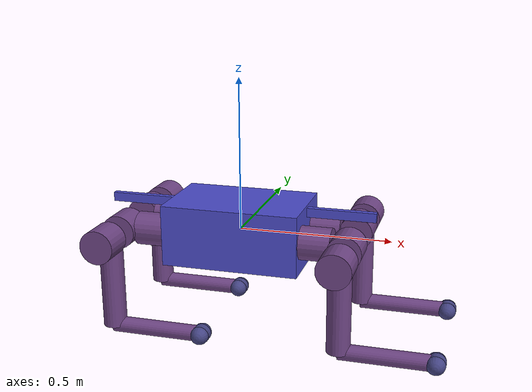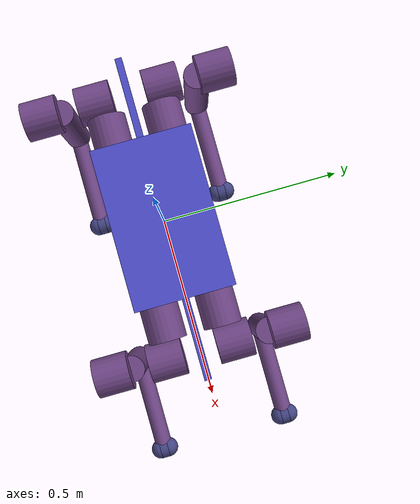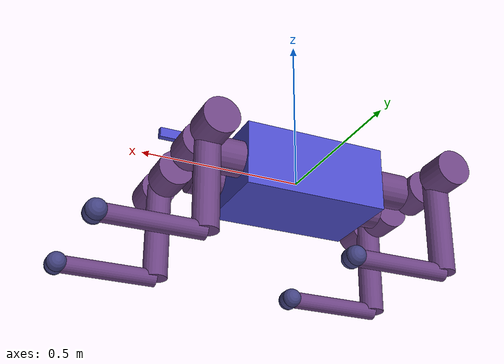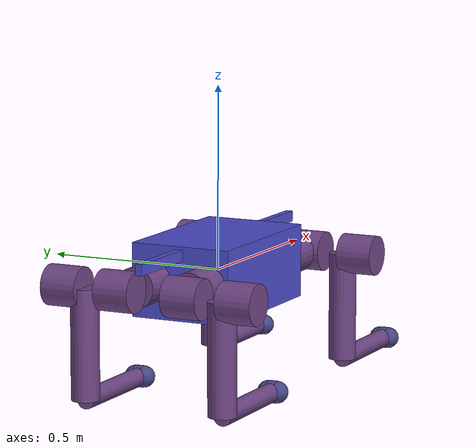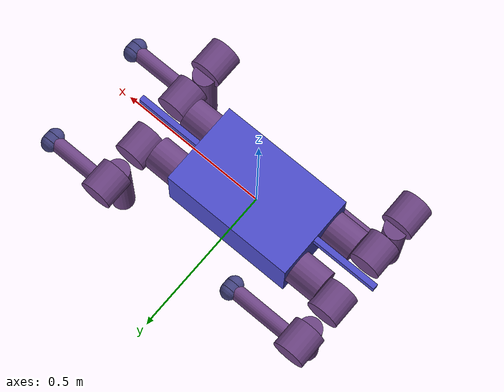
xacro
<?xml version="1.0"?>
<robot xmlns:xacro="http://www.ros.org/wiki/xacro" name="Cerberus">

    <xacro:include filename="$(find cerberus_description)/urdf/leg_macro.xacro" />

    <xacro:arg name="effort" default="60" />
    <xacro:arg name="max_joint_velocity" default="1.200" />

    <link name="base_link">
        <visual>
            <geometry>
                <box size="0.45 0.282 0.2" />
            </geometry>
            <material name="blue">
                <color rgba="0.3 0.3 0.8 1.0" />
            </material>
        </visual>
        <collision>
            <geometry>
                <box size="0.45 0.282 0.2" />
            </geometry>
        </collision>
        <visual>
            <origin xyz="0 0 0.077" />
            <geometry>
                <box size="0.9 0.019 0.03" />
            </geometry>
            <material name="blue">
                <color rgba="0.3 0.3 0.8 1.0" />
            </material>
        </visual>
        <collision>
            <origin xyz="0 0 0.077" />
            <geometry>
                <box size="0.9 0.019 0.03" />
            </geometry>
        </collision>
        <inertial>
            <mass value="5.0" />
            <inertia ixx="0.04980166667" iyy="0.1010416667" izz="0.1175"
                ixy="0.0" ixz="0.0" iyz="0.0" />
        </inertial>
    </link>

    <xacro:leg_macro
        leg_name="FL"
        parent_link="base_link"
        gearbox_offset="0.1"
        connector_xyz="0.275 0.08 0"
        connector_rpy="0 1.5707963267948966 0"
        axis="0 1 0"
        rot_off="1.5707963267948966"
        shoulder_lower_limit="-2.094395102"
        shoulder_upper_limit="1.047197551"
        knee_rot_off="1.5707963267948966"
        knee_lower_limit="-0.5235987756"
        knee_upper_limit="1.047197551"
        effort="$(arg effort)"
        max_joint_velocity="$(arg max_joint_velocity)"
    />

    <xacro:leg_macro
        leg_name="FR"
        parent_link="base_link"
        gearbox_offset="0.1"
        connector_xyz="0.275 -0.08 0"
        connector_rpy="3.14159265 -1.5707963267948966 0"
        axis="0 -1 0"
        rot_off="-1.5707963267948966"
        shoulder_lower_limit="-2.094395102"
        shoulder_upper_limit="1.047197551"
        knee_rot_off="-1.5707963267948966"
        knee_lower_limit="-0.5235987756"
        knee_upper_limit="1.047197551"
        effort="$(arg effort)"
        max_joint_velocity="$(arg max_joint_velocity)"
    />

    <xacro:leg_macro
        leg_name="RL"
        parent_link="base_link"
        gearbox_offset="-0.1"
        connector_xyz="-0.275 0.08 0"
        connector_rpy="0 1.5707963267948966 0"
        axis="0 1 0"
        rot_off="1.5707963267948966"
        shoulder_lower_limit="-2.094395102"
        shoulder_upper_limit="1.047197551"
        knee_rot_off="1.5707963267948966"
        knee_lower_limit="-0.5235987756"
        knee_upper_limit="1.047197551"
        effort="$(arg effort)"
        max_joint_velocity="$(arg max_joint_velocity)"
    />

    <xacro:leg_macro
        leg_name="RR"
        parent_link="base_link"
        gearbox_offset="-0.1"
        connector_xyz="-0.275 -0.08 0"
        connector_rpy="3.14159265 -1.5707963267948966 0"
        axis="0 -1 0"
        rot_off="-1.5707963267948966"
        shoulder_lower_limit="-2.094395102"
        shoulder_upper_limit="1.047197551"
        knee_rot_off="-1.5707963267948966"
        knee_lower_limit="-0.5235987756"
        knee_upper_limit="1.047197551"
        effort="$(arg effort)"
        max_joint_velocity="$(arg max_joint_velocity)"
    />

    <link name="imu_link">
        <inertial>
            <mass value="0.01" />
            <origin xyz="0 0 0" rpy="0 0 0" />
            <inertia ixx="0.00001" iyy="0.00001" izz="0.00001" ixy="0.0" ixz="0.0" iyz="0.0" />
        </inertial>
    </link>

    <joint name="imu_joint" type="fixed">
        <parent link="base_link" />
        <child link="imu_link" />
        <origin xyz="0 0 0.1" rpy="0 0 0" />
    </joint>

    <gazebo reference="imu_link">
        <sensor name="imu_sensor" type="imu">
            <update_rate>200.0</update_rate>
            <always_on>1</always_on>
            <visualize>true</visualize>
            <imu>
                <topic>imu</topic>
                <angular_velocity>
                    <x>
                        <noise type="gaussian">
                            <mean>0.0</mean>
                            <stddev>0.1</stddev>
                        </noise>
                    </x>
                    <y>
                        <noise type="gaussian">
                            <mean>0.0</mean>
                            <stddev>0.1</stddev>
                        </noise>
                    </y>
                    <z>
                        <noise type="gaussian">
                            <mean>0.0</mean>
                            <stddev>0.1</stddev>
                        </noise>
                    </z>
                </angular_velocity>
                <linear_acceleration>
                    <x>true</x>
                    <y>true</y>
                    <z>true</z>
                </linear_acceleration>
            </imu>
        </sensor>
    </gazebo>

    <link name="realsense_link">
        <inertial>
            <mass value="0.01" />
            <origin xyz="0 0 0" rpy="0 0 0" />
            <inertia ixx="0.00001" iyy="0.00001" izz="0.00001" ixy="0.0" ixz="0.0" iyz="0.0" />
        </inertial>
    </link>

    <joint name="cam_joint" type="fixed">
        <parent link="base_link" />
        <child link="realsense_link" />
        <origin xyz="0 0 0.1" rpy="0 0 0" />
    </joint>

    <ros2_control name="IgnitionSystem" type="system">
        <hardware>
            <plugin>ign_ros2_control/IgnitionSystem</plugin>
        </hardware>

        <joint name="FL_hip_joint">
            <command_interface name="position" />
            <command_interface name="velocity" />

            <state_interface name="position" />
            <state_interface name="velocity" />
            <state_interface name="effort" />
        </joint>

        <joint name="FL_thigh_joint">
            <command_interface name="position" />
            <command_interface name="velocity" />

            <state_interface name="position" />
            <state_interface name="velocity" />
            <state_interface name="effort" />
        </joint>

        <joint name="FL_calf_joint">
            <command_interface name="position" />
            <command_interface name="velocity" />

            <state_interface name="position" />
            <state_interface name="velocity" />
            <state_interface name="effort" />
        </joint>

        <joint name="FR_hip_joint">
            <command_interface name="position" />
            <command_interface name="velocity" />

            <state_interface name="position" />
            <state_interface name="velocity" />
            <state_interface name="effort" />
        </joint>

        <joint name="FR_thigh_joint">
            <command_interface name="position" />
            <command_interface name="velocity" />

            <state_interface name="position" />
            <state_interface name="velocity" />
            <state_interface name="effort" />
        </joint>

        <joint name="FR_calf_joint">
            <command_interface name="position" />
            <command_interface name="velocity" />

            <state_interface name="position" />
            <state_interface name="velocity" />
            <state_interface name="effort" />
        </joint>

        <joint name="RL_hip_joint">
            <command_interface name="position" />
            <command_interface name="velocity" />

            <state_interface name="position" />
            <state_interface name="velocity" />
            <state_interface name="effort" />
        </joint>

        <joint name="RL_thigh_joint">
            <command_interface name="position" />
            <command_interface name="velocity" />

            <state_interface name="position" />
            <state_interface name="velocity" />
            <state_interface name="effort" />
        </joint>

        <joint name="RL_calf_joint">
            <command_interface name="position" />
            <command_interface name="velocity" />

            <state_interface name="position" />
            <state_interface name="velocity" />
            <state_interface name="effort" />
        </joint>

        <joint name="RR_hip_joint">
            <command_interface name="position" />
            <command_interface name="velocity" />

            <state_interface name="position" />
            <state_interface name="velocity" />
            <state_interface name="effort" />
        </joint>

        <joint name="RR_thigh_joint">
            <command_interface name="position" />
            <command_interface name="velocity" />

            <state_interface name="position" />
            <state_interface name="velocity" />
            <state_interface name="effort" />
        </joint>

        <joint name="RR_calf_joint">
            <command_interface name="position" />
            <command_interface name="velocity" />

            <state_interface name="position" />
            <state_interface name="velocity" />
            <state_interface name="effort" />
        </joint>
    </ros2_control>

    <gazebo>
        <plugin filename="ign_ros2_control-system"
            name="ign_ros2_control::IgnitionROS2ControlPlugin">
            <robot_param>robot_description</robot_param>
            <robot_param_node>robot_state_publisher</robot_param_node>
            <parameters>$(find cerberus_bringup)/config/cerberus.yaml</parameters>
        </plugin>
        <plugin filename="libignition-gazebo-imu-system.so"
            name="ignition::gazebo::systems::Imu">
        </plugin>
    </gazebo>

</robot>

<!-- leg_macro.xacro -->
<robot xmlns:xacro="http://www.ros.org/wiki/xacro">
  <xacro:macro name="leg_macro"
    params="
      leg_name
      parent_link
      gearbox_offset
      connector_xyz:='0.35 0.08 0'
      connector_rpy:='0 1.5707963267948966 0'
      axis:='0 1 0'
      rot_off='0'
      shoulder_lower_limit='-1.57'
      shoulder_upper_limit='1.57'
      knee_rot_off='0'
      knee_lower_limit='-1.57'
      knee_upper_limit='1.57'
      effort='200'
      max_joint_velocity='2.0'
    ">
    <joint name="${leg_name}_leg_connector" type="fixed">
      <parent link="${parent_link}" />
      <child link="${leg_name}_gearbox_shoulder" />
      <origin xyz="${connector_xyz}" rpy="${connector_rpy}" />
    </joint>

    <link name="${leg_name}_gearbox_shoulder">
      <visual>
        <geometry>
          <cylinder radius="0.055" length="0.1" />
        </geometry>
        <material name="purple">
          <color rgba="0.43 0.27 0.52 1" />
        </material>
      </visual>
      <collision>
        <geometry>
          <cylinder radius="0.055" length="0.1" />
        </geometry>
      </collision>
      <inertial>
        <mass value="0.95" />
        <inertia ixx="0.001509" iyy="0.001509" izz="0.001438"
          ixy="0.0" ixz="0.0" iyz="0.0" />
      </inertial>
    </link>

    <joint name="${leg_name}_hip_joint" type="revolute">
      <parent link="${leg_name}_gearbox_shoulder" />
      <child link="${leg_name}_gearbox_shoulder2" />
      <origin xyz="0 0 ${gearbox_offset}" rpy="1.5707963267948963 0 0" />
      <axis xyz="${axis}" />
      <limit effort="${effort}" velocity="${max_joint_velocity}" lower="-1.57" upper="1.57" />
      <dynamics damping="0.001" friction="1"/>
    </joint>

    <link name="${leg_name}_gearbox_shoulder2">
      <visual>
        <origin xyz="0 0 -0.0175" />
        <geometry>
          <cylinder radius="0.055" length="0.1" />
        </geometry>
        <material name="purple">
          <color rgba="0.43 0.27 0.52 1" />
        </material>
      </visual>
      <collision>
        <origin xyz="0 0 -0.0175" />
        <geometry>
          <cylinder radius="0.055" length="0.1" />
        </geometry>
      </collision>
      <inertial>
        <origin xyz="0 0 -0.0175" />
        <mass value="0.95" />
        <inertia ixx="0.001509" iyy="0.001509" izz="0.001438"
          ixy="0.0" ixz="0.0" iyz="0.0" />
      </inertial>
    </link>

    <joint name="${leg_name}_thigh_joint" type="revolute">
      <parent link="${leg_name}_gearbox_shoulder2" />
      <child link="${leg_name}_upper_leg" />
      <origin xyz="0 0 -0.1205" rpy="1.5707963267948963 0 ${rot_off}" />
      <axis xyz="${axis}" />
      <limit effort="${effort}" velocity="${max_joint_velocity}" lower="${shoulder_lower_limit}"
        upper="${shoulder_upper_limit}" />
        <dynamics damping="0.001" friction="1"/>
      </joint>

    <link name="${leg_name}_outer_gearbox">
      <visual>
        <origin xyz="0 0 -0.0175" />
        <geometry>
          <cylinder radius="0.055" length="0.1" />
        </geometry>
        <material name="purple">
          <color rgba="0.43 0.27 0.52 1" />
        </material>
      </visual>
      <collision>
        <origin xyz="0 0 -0.0175" />
        <geometry>
          <cylinder radius="0.055" length="0.1" />
        </geometry>
      </collision>
      <inertial>
        <origin xyz="0 0 -0.0175" />
        <mass value="0.95" />
        <inertia ixx="0.001509" iyy="0.001509" izz="0.001438"
          ixy="0.0" ixz="0.0" iyz="0.0" />
      </inertial>
    </link>

    <joint name="${leg_name}_shoulder_gearbox" type="fixed">
      <parent link="${leg_name}_upper_leg" />
      <child link="${leg_name}_outer_gearbox" />
      <origin xyz="0 -0.07 0" rpy="1.5707963267948963 0 0" />
    </joint>

    <link name="${leg_name}_upper_leg">
      <visual>
        <origin xyz="0 0 0.15" />
        <geometry>
          <cylinder radius="0.038" length="0.3" />
        </geometry>
        <material name="purple">
          <color rgba="0.43 0.27 0.52 1" />
        </material>
      </visual>
      <collision>
        <origin xyz="0 0 0.15" />
        <geometry>
          <cylinder radius="0.038" length="0.3" />
        </geometry>
      </collision>
      <inertial>
        <origin xyz="0 0 0.15" />
        <mass value="0.55" />
        <inertia ixx="0.004327" iyy="0.004327" izz="0.000397"
          ixy="0.0" ixz="0.0" iyz="0.0" />
      </inertial>
    </link>

    <joint name="${leg_name}_calf_joint" type="revolute">
      <parent link="${leg_name}_upper_leg" />
      <child link="${leg_name}_lower_leg" />
      <origin xyz="0 0 0.3" rpy="0 ${knee_rot_off} 0" />
      <axis xyz="${axis}" />
      <limit effort="${effort}" velocity="${max_joint_velocity}" lower="${knee_lower_limit}"
        upper="${knee_upper_limit}" />
        <dynamics damping="0.001" friction="1"/>
      </joint>

    <link name="${leg_name}_lower_leg">
      <visual>
        <origin xyz="0 0 0.15" />
        <geometry>
          <cylinder radius="0.026" length="0.3" />
        </geometry>
        <material name="purple">
          <color rgba="0.43 0.27 0.52 1" />
        </material>
      </visual>
      <collision>
        <origin xyz="0 0 0.15" />
        <geometry>
          <cylinder radius="0.026" length="0.3" />
        </geometry>
      </collision>
      <inertial>
        <origin xyz="0 0 0.15" />
        <mass value="0.4" />
        <inertia ixx="0.003068" iyy="0.003068" izz="0.000135"
          ixy="0.0" ixz="0.0" iyz="0.0" />
      </inertial>
    </link>

    <joint name="${leg_name}_foot_fixed" type="revolute">
      <parent link="${leg_name}_lower_leg" />
      <child link="${leg_name}_foot" />
      <origin xyz="0 0 0.3" rpy="1.5707963267948966 0 0" />
      <axis xyz="1 0 0" />
      <limit effort="0" velocity="0" lower="0"
        upper="0" />
    </joint>

    <link name="${leg_name}_foot">
      <visual>
        <origin xyz="0 0 0" />
        <geometry>
          <cylinder radius="0.030" length="0.025" />
        </geometry>
        <material name="kinda_blue">
          <color rgba="0.27 0.27 0.52 1" />
        </material>
      </visual>
      <visual>
        <origin xyz="0 0 0.0125" />
        <geometry>
          <sphere radius="0.030" />
        </geometry>
        <material name="kinda_blue">
          <color rgba="0.27 0.27 0.52 1" />
        </material>
      </visual>
      <visual>
        <origin xyz="0 0 -0.0125" />
        <geometry>
          <sphere radius="0.030" />
        </geometry>
        <material name="kinda_blue">
          <color rgba="0.27 0.27 0.52 1" />
        </material>
      </visual>

      <collision>
        <origin xyz="0 0 0" />
        <geometry>
          <cylinder radius="0.030" length="0.025" />
        </geometry>
      </collision>
      <collision>
        <origin xyz="0 0 0.0125" />
        <geometry>
          <sphere radius="0.030" />
        </geometry>
      </collision>
      <collision>
        <origin xyz="0 0 -0.0125" />
        <geometry>
          <sphere radius="0.030" />
        </geometry>
      </collision>

      <inertial>
        <mass value="0.1" />
        <inertia ixx="0.0000436" iyy="0.0000436" izz="0.000039"
          ixy="0.0" ixz="0.0" iyz="0.0" />
      </inertial>
    </link>

  </xacro:macro>
</robot>
